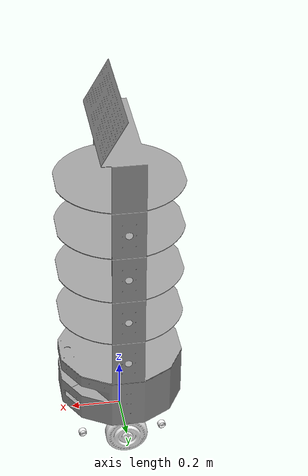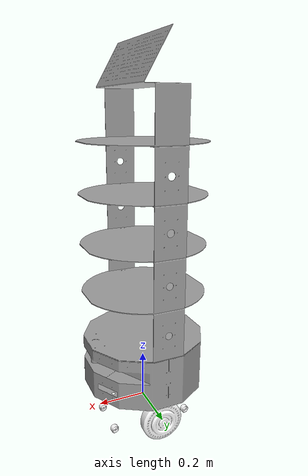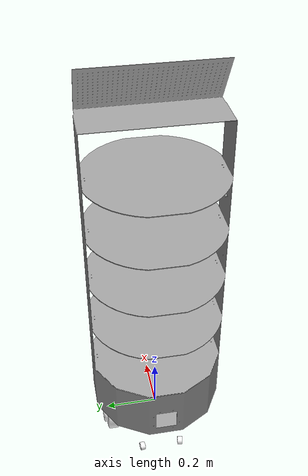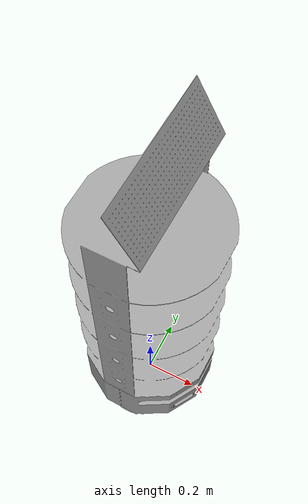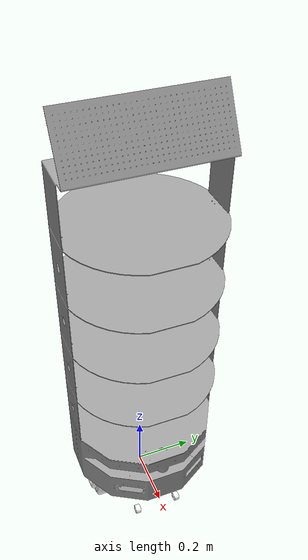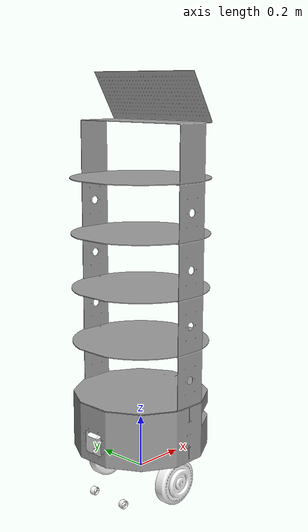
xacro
<?xml version="1.0" encoding="utf-8"?>
<robot name="robot">

  <!-- ROM DYNAMICS ADD -->
  <link name="base_footprint"/>
  <joint name="base_footprint_to_base_link" type="fixed">
    <origin xyz="0 0 0" rpy="0 0 0"/>
    <parent link="base_footprint"/>
    <child link="base_link"/>
    <axis xyz="0 0 0"/>
  </joint>

  <link name="camera_link"/>
  <joint name="camera_link_to_base_link" type="fixed">
    <origin xyz="0.1 0 0.1" rpy="0 0 0"/>
    <parent link="base_link"/>
    <child link="camera_link"/>
    <axis xyz="0 0 0"/>
  </joint>

  <link name="three_d_camera_link"/>
  <joint name="three_d_camera_link_to_base_link" type="fixed">
    <origin xyz="0.1 0 0.1" rpy="0 0 0"/>
    <parent link="base_link"/>
    <child link="three_d_camera_link"/>
    <axis xyz="0 0 0"/>
  </joint>

  <link name="laser"/>
  <joint name="laser_to_base_link" type="fixed">
    <origin xyz="0.1 0 0.1" rpy="0 0 0"/>
    <parent link="base_link"/>
    <child link="laser"/>
    <axis xyz="0 0 0"/>
  </joint>

  <link name="usb_imu_link"/>
  <joint name="usb_imu_link_to_base_link" type="fixed">
    <origin xyz="0.1 0 0.1" rpy="0 0 0"/>
    <parent link="base_link"/>
    <child link="usb_imu_link"/>
    <axis xyz="0 0 0"/>
  </joint>

  <link name="board_imu_link"/>
  <joint name="board_imu_link_to_base_link" type="fixed">
    <origin xyz="0.1 0 0.1" rpy="0 0 0"/>
    <parent link="base_link"/>
    <child link="board_imu_link"/>
    <axis xyz="0 0 0"/>
  </joint>
  <!-- ROM DYNAMICS END -->

  <link name="base_link">
    <inertial>
      <origin
        xyz="-0.006381 0.0039481 0.0009"
        rpy="0 0 0" />
      <mass
        value="0.2471" />
      <inertia
        ixx="0.0033314"
        ixy="-3.3441E-08"
        ixz="-4.1779E-18"
        iyy="0.0049517"
        iyz="-2.0567E-19"
        izz="0.008283" />
    </inertial>
    <visual>
      <origin
        xyz="0 0 0"
        rpy="0 0 0" />
      <geometry>
        <mesh
          filename="package://reeman_clone_description/meshes/base_link.STL" />
      </geometry>
      <material
        name="">
        <color
          rgba="0.62745 0.62745 0.62745 1" />
      </material>
    </visual>
    <collision>
      <origin
        xyz="0 0 0"
        rpy="0 0 0" />
      <geometry>
        <mesh
          filename="package://reeman_clone_description/meshes/base_link.STL" />
      </geometry>
    </collision>
  </link>
  <link
    name="right_wheel_link">
    <inertial>
      <origin
        xyz="-1.22238889496695E-09 0.00261076778922065 1.06166525570828E-09"
        rpy="0 0 0" />
      <mass
        value="1.13468316605061" />
      <inertia
        ixx="0.00214377738340467"
        ixy="1.90141727129734E-09"
        ixz="-8.50793852563956E-12"
        iyy="0.00371288553259231"
        iyz="-9.49731061124577E-10"
        izz="0.00214377736881791" />
    </inertial>
    <visual>
      <origin
        xyz="0 0 0"
        rpy="0 0 0" />
      <geometry>
        <mesh
          filename="package://reeman_clone_description/meshes/right_wheel_link.STL" />
      </geometry>
      <material
        name="">
        <color
          rgba="1 1 1 1" />
      </material>
    </visual>
    <collision>
      <origin
        xyz="0 0 0"
        rpy="0 0 0" />
      <geometry>
        <mesh
          filename="package://reeman_clone_description/meshes/right_wheel_link.STL" />
      </geometry>
    </collision>
  </link>
  <joint
    name="right_wheel_joint"
    type="continuous">
    <origin
      xyz="-0.000612714327570671 -0.178737474015559 -0.0067060362648815"
      rpy="0 0 0" />
    <parent
      link="base_link" />
    <child
      link="right_wheel_link" />
    <axis
      xyz="0 1 0" />
  </joint>
  <link
    name="left_wheel_link">
    <inertial>
      <origin
        xyz="1.56960827668584E-09 -0.00261076778922059 -3.97111538097406E-10"
        rpy="0 0 0" />
      <mass
        value="1.1346831660506" />
      <inertia
        ixx="0.00214377738155265"
        ixy="1.86551956893084E-09"
        ixz="-9.79641792816089E-12"
        iyy="0.00371288553259228"
        iyz="-1.0184368717158E-09"
        izz="0.0021437773706699" />
    </inertial>
    <visual>
      <origin
        xyz="0 0 0"
        rpy="0 0 0" />
      <geometry>
        <mesh
          filename="package://reeman_clone_description/meshes/left_wheel_link.STL" />
      </geometry>
      <material
        name="">
        <color
          rgba="1 1 1 1" />
      </material>
    </visual>
    <collision>
      <origin
        xyz="0 0 0"
        rpy="0 0 0" />
      <geometry>
        <mesh
          filename="package://reeman_clone_description/meshes/left_wheel_link.STL" />
      </geometry>
    </collision>
  </link>
  <joint
    name="left_wheel_joint"
    type="continuous">
    <origin
      xyz="-0.00111271860764666 0.186733072210104 -0.0067060362648807"
      rpy="0 0 0" />
    <parent
      link="base_link" />
    <child
      link="left_wheel_link" />
    <axis
      xyz="0 1 0" />
  </joint>
  <link
    name="front_right_caster_link">
    <inertial>
      <origin
        xyz="9.80282521823028E-12 3.37561645302742E-11 -1.03845265719826E-11"
        rpy="0 0 0" />
      <mass
        value="0.0103871549572359" />
      <inertia
        ixx="9.72294235682643E-07"
        ixy="5.19022156708706E-09"
        ixz="4.6110233329234E-15"
        iyy="1.47607253400214E-06"
        iyz="4.47572669905215E-13"
        izz="9.72240768629537E-07" />
    </inertial>
    <visual>
      <origin
        xyz="0 0 0"
        rpy="0 0 0" />
      <geometry>
        <mesh
          filename="package://reeman_clone_description/meshes/front_right_caster_link.STL" />
      </geometry>
      <material
        name="">
        <color
          rgba="1 1 1 1" />
      </material>
    </visual>
    <collision>
      <origin
        xyz="0 0 0"
        rpy="0 0 0" />
      <geometry>
        <mesh
          filename="package://reeman_clone_description/meshes/front_right_caster_link.STL" />
      </geometry>
    </collision>
  </link>
  <joint
    name="front_right_caster_joint"
    type="fixed">
    <origin
      xyz="0.16615 -0.074374 -0.076"
      rpy="0 0 0" />
    <parent
      link="base_link" />
    <child
      link="front_right_caster_link" />
    <axis
      xyz="0 0 0" />
  </joint>
  <link
    name="front_left_caster_link">
    <inertial>
      <origin
        xyz="0 2.77555756156289E-17 0"
        rpy="0 0 0" />
      <mass
        value="0.0103871549572359" />
      <inertia
        ixx="9.7503779582315E-07"
        ixy="-3.74373788735228E-08"
        ixz="-1.59185679989932E-14"
        iyy="1.4733289738613E-06"
        iyz="2.13068500263688E-13"
        izz="9.72240768629193E-07" />
    </inertial>
    <visual>
      <origin
        xyz="0 0 0"
        rpy="0 0 0" />
      <geometry>
        <mesh
          filename="package://reeman_clone_description/meshes/front_left_caster_link.STL" />
      </geometry>
      <material
        name="">
        <color
          rgba="1 1 1 1" />
      </material>
    </visual>
    <collision>
      <origin
        xyz="0 0 0"
        rpy="0 0 0" />
      <geometry>
        <mesh
          filename="package://reeman_clone_description/meshes/front_left_caster_link.STL" />
      </geometry>
    </collision>
  </link>
  <joint
    name="front_left_caster_joint"
    type="fixed">
    <origin
      xyz="0.16674791871922 0.0817655257441773 -0.0760000000000003"
      rpy="0 0 0" />
    <parent
      link="base_link" />
    <child
      link="front_left_caster_link" />
    <axis
      xyz="0 0 0" />
  </joint>
  <link
    name="back_right_caster_link">
    <inertial>
      <origin
        xyz="0 1.38777878078145E-17 -2.77555756156289E-17"
        rpy="0 0 0" />
      <mass
        value="0.0103871549572359" />
      <inertia
        ixx="9.81214153150242E-07"
        ixy="6.66410857927456E-08"
        ixz="3.42446508638621E-23"
        iyy="1.4671526165342E-06"
        iyz="9.21100098637752E-23"
        izz="9.72240768629191E-07" />
    </inertial>
    <visual>
      <origin
        xyz="0 0 0"
        rpy="0 0 0" />
      <geometry>
        <mesh
          filename="package://reeman_clone_description/meshes/back_right_caster_link.STL" />
      </geometry>
      <material
        name="">
        <color
          rgba="1 1 1 1" />
      </material>
    </visual>
    <collision>
      <origin
        xyz="0 0 0"
        rpy="0 0 0" />
      <geometry>
        <mesh
          filename="package://reeman_clone_description/meshes/back_right_caster_link.STL" />
      </geometry>
    </collision>
  </link>
  <joint
    name="back_right_caster_joint"
    type="fixed">
    <origin
      xyz="-0.16677 -0.073778 -0.076"
      rpy="0 0 0" />
    <parent
      link="base_link" />
    <child
      link="back_right_caster_link" />
    <axis
      xyz="0 0 0" />
  </joint>
  <link
    name="back_left_caster_link">
    <inertial>
      <origin
        xyz="0 0 0"
        rpy="0 0 0" />
      <mass
        value="0" />
      <inertia
        ixx="0"
        ixy="0"
        ixz="0"
        iyy="0"
        iyz="0"
        izz="0" />
    </inertial>
    <visual>
      <origin
        xyz="0 0 0"
        rpy="0 0 0" />
      <geometry>
        <mesh
          filename="package://reeman_clone_description/meshes/back_left_caster_link.STL" />
      </geometry>
      <material
        name="">
        <color
          rgba="1 1 1 1" />
      </material>
    </visual>
    <collision>
      <origin
        xyz="0 0 0"
        rpy="0 0 0" />
      <geometry>
        <mesh
          filename="package://reeman_clone_description/meshes/back_left_caster_link.STL" />
      </geometry>
    </collision>
  </link>
  <joint
    name="back_left_caster_joint"
    type="fixed">
    <origin
      xyz="-0.166770030766659 0.0817624983187506 -0.0760000000000006"
      rpy="0 0 0" />
    <parent
      link="base_link" />
    <child
      link="back_left_caster_link" />
    <axis
      xyz="0 0 0" />
  </joint>

  <!-- ROM ADD -->
  <ros2_control name="DiffBotSystem" type="system">
    <hardware>
      <plugin>gz_ros2_control/GazeboSimSystem</plugin>
    </hardware>
    <joint name="left_wheel_joint">
      <command_interface name="velocity"/>
      <state_interface name="position"/>
      <state_interface name="velocity"/>
    </joint>
    <joint name="right_wheel_joint">
      <command_interface name="velocity"/>
      <state_interface name="position"/>
      <state_interface name="velocity"/>
    </joint>
  </ros2_control>

  <!-- === Wheel friction: HIGH so wheels grip the ground and propel the robot === -->
  <gazebo reference="left_wheel_link">
    <collision>
      <surface>
        <friction>
          <ode>
            <mu>1.0</mu>
            <mu2>1.0</mu2>
            <slip1>0.0</slip1>
            <slip2>0.0</slip2>
          </ode>
          <torsional>
            <coefficient>0.001</coefficient>
            <use_patch_radius>true</use_patch_radius>
            <patch_radius>0.085</patch_radius>
          </torsional>
        </friction>
        <contact>
          <ode>
            <kp>1e6</kp>
            <kd>100.0</kd>
            <max_vel>0.1</max_vel>
            <min_depth>0.001</min_depth>
          </ode>
        </contact>
      </surface>
    </collision>
  </gazebo>

  <gazebo reference="right_wheel_link">
    <collision>
      <surface>
        <friction>
          <ode>
            <mu>1.0</mu>
            <mu2>1.0</mu2>
            <slip1>0.0</slip1>
            <slip2>0.0</slip2>
          </ode>
          <torsional>
            <coefficient>0.001</coefficient>
            <use_patch_radius>true</use_patch_radius>
            <patch_radius>0.085</patch_radius>
          </torsional>
        </friction>
        <contact>
          <ode>
            <kp>1e6</kp>
            <kd>100.0</kd>
            <max_vel>0.1</max_vel>
            <min_depth>0.001</min_depth>
          </ode>
        </contact>
      </surface>
    </collision>
  </gazebo>

  <!-- === Caster friction: NEAR-ZERO so they slide freely === -->
  <gazebo reference="front_right_caster_link">
    <collision>
      <surface>
        <friction>
          <ode><mu>0.0</mu><mu2>0.0</mu2></ode>
        </friction>
      </surface>
    </collision>
  </gazebo>

  <gazebo reference="front_left_caster_link">
    <collision>
      <surface>
        <friction>
          <ode><mu>0.0</mu><mu2>0.0</mu2></ode>
        </friction>
      </surface>
    </collision>
  </gazebo>

  <gazebo reference="back_right_caster_link">
    <collision>
      <surface>
        <friction>
          <ode><mu>0.0</mu><mu2>0.0</mu2></ode>
        </friction>
      </surface>
    </collision>
  </gazebo>

  <gazebo reference="back_left_caster_link">
    <collision>
      <surface>
        <friction>
          <ode><mu>0.0</mu><mu2>0.0</mu2></ode>
        </friction>
      </surface>
    </collision>
  </gazebo>

  <gazebo>
    <!-- HARMONIC -->
    <plugin filename="gz_ros2_control-system" name="gz_ros2_control::GazeboSimROS2ControlPlugin">
    <!-- FORTRESS -->
      <parameters>$(find reeman_clone_description)/config/diff_drive_controller.yaml</parameters>
    </plugin>
  </gazebo>

  <!-- SENSORS (Gazebo Fortress / Ignition Gazebo 6)                    -->
  <!-- Requires in world SDF:                                           -->
  <!--   ignition-gazebo-sensors-system  (camera, lidar, rgbd)         -->
  <!--   ignition-gazebo-imu-system      (imu)                         -->

  <!-- IMU sensors -->
  <gazebo reference="usb_imu_link">
    <sensor name="usb_imu_sensor" type="imu">
      <always_on>1</always_on>
      <update_rate>100</update_rate>
      <visualize>true</visualize>
      <topic>imu/out</topic>
      <imu>
        <angular_velocity>
          <x><noise type="gaussian"><mean>0</mean><stddev>2e-4</stddev></noise></x>
          <y><noise type="gaussian"><mean>0</mean><stddev>2e-4</stddev></noise></y>
          <z><noise type="gaussian"><mean>0</mean><stddev>2e-4</stddev></noise></z>
        </angular_velocity>
        <linear_acceleration>
          <x><noise type="gaussian"><mean>0</mean><stddev>1.7e-2</stddev></noise></x>
          <y><noise type="gaussian"><mean>0</mean><stddev>1.7e-2</stddev></noise></y>
          <z><noise type="gaussian"><mean>0</mean><stddev>1.7e-2</stddev></noise></z>
        </linear_acceleration>
      </imu>
    </sensor>
  </gazebo>
  <gazebo reference="board_imu_link">
    <sensor name="board_imu_sensor" type="imu">
      <always_on>1</always_on>
      <update_rate>100</update_rate>
      <visualize>true</visualize>
      <topic>imu/wit/out</topic>
      <imu>
        <angular_velocity>
          <x><noise type="gaussian"><mean>0</mean><stddev>2e-4</stddev></noise></x>
          <y><noise type="gaussian"><mean>0</mean><stddev>2e-4</stddev></noise></y>
          <z><noise type="gaussian"><mean>0</mean><stddev>2e-4</stddev></noise></z>
        </angular_velocity>
        <linear_acceleration>
          <x><noise type="gaussian"><mean>0</mean><stddev>1.7e-2</stddev></noise></x>
          <y><noise type="gaussian"><mean>0</mean><stddev>1.7e-2</stddev></noise></y>
          <z><noise type="gaussian"><mean>0</mean><stddev>1.7e-2</stddev></noise></z>
        </linear_acceleration>
      </imu>
    </sensor>
  </gazebo>

  <!-- RGB Camera sensor -->
  <gazebo reference="camera_link">
    <sensor name="camera_sensor" type="camera">
      <camera>
        <horizontal_fov>1.047</horizontal_fov>
        <image>
          <width>640</width>
          <height>480</height>
          <format>R8G8B8</format>
        </image>
        <clip>
          <near>0.1</near>
          <far>100</far>
        </clip>
        <noise>
          <type>gaussian</type>
          <mean>0</mean>
          <stddev>0.007</stddev>
        </noise>
      </camera>
      <always_on>1</always_on>
      <update_rate>30</update_rate>
      <visualize>true</visualize>
      <topic>/camera/image_raw</topic>
    </sensor>
  </gazebo>

  <!-- 3D Camera (RGBD) sensor -->
  <gazebo reference="three_d_camera_link">
    <sensor name="rgbd_camera_sensor" type="rgbd_camera">
      <camera>
        <horizontal_fov>1.047</horizontal_fov>
        <image>
          <width>640</width>
          <height>480</height>
          <format>R8G8B8</format>
        </image>
        <clip>
          <near>0.1</near>
          <far>10</far>
        </clip>
        <noise>
          <type>gaussian</type>
          <mean>0</mean>
          <stddev>0.007</stddev>
        </noise>
        <depth_camera>
          <clip>
            <near>0.1</near>
            <far>10</far>
          </clip>
        </depth_camera>
      </camera>
      <always_on>1</always_on>
      <update_rate>30</update_rate>
      <visualize>true</visualize>
      <topic>/three_d_camera</topic>
    </sensor>
  </gazebo>

  <!-- GPU Lidar sensor (360° 2D scan) -->
  <gazebo reference="laser">
    <sensor name="gpu_lidar_sensor" type="gpu_lidar">
      <topic>/lidar/scan</topic>
      <update_rate>10</update_rate>
      <ray>
        <scan>
          <horizontal>
            <samples>640</samples>
            <resolution>1</resolution>
            <min_angle>-3.14159</min_angle>
            <max_angle>3.14159</max_angle>
          </horizontal>
          <vertical>
            <samples>1</samples>
            <resolution>0.01</resolution>
            <min_angle>0</min_angle>
            <max_angle>0</max_angle>
          </vertical>
        </scan>
        <range>
          <min>0.08</min>
          <max>10.0</max>
          <resolution>0.01</resolution>
        </range>
        <noise>
          <type>gaussian</type>
          <mean>0</mean>
          <stddev>0.01</stddev>
        </noise>
      </ray>
      <always_on>1</always_on>
      <visualize>true</visualize>
    </sensor>
  </gazebo>
  <!-- ROM END -->
</robot>
